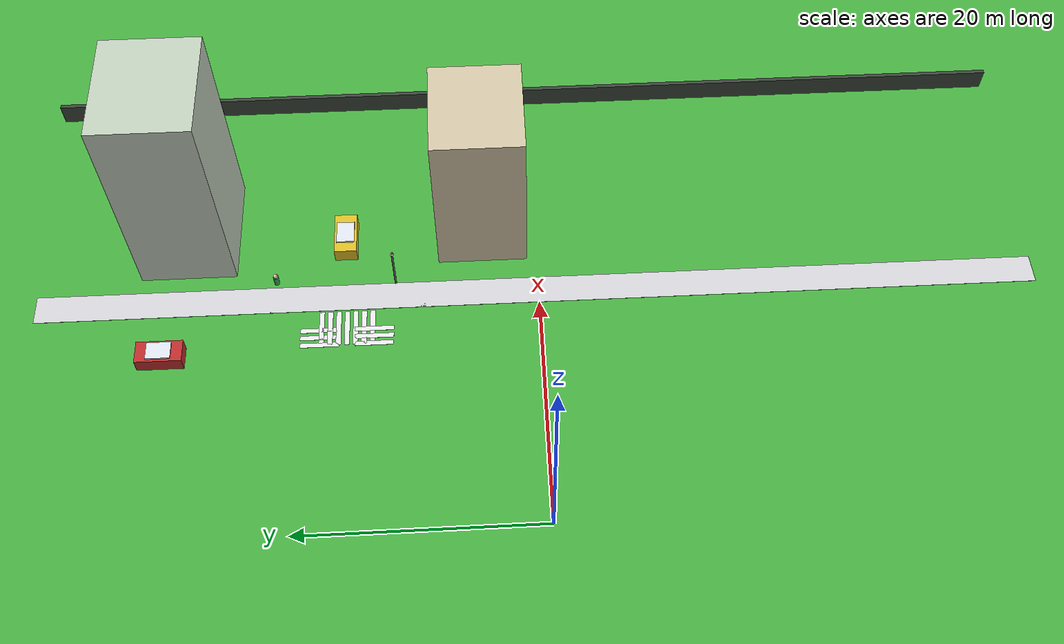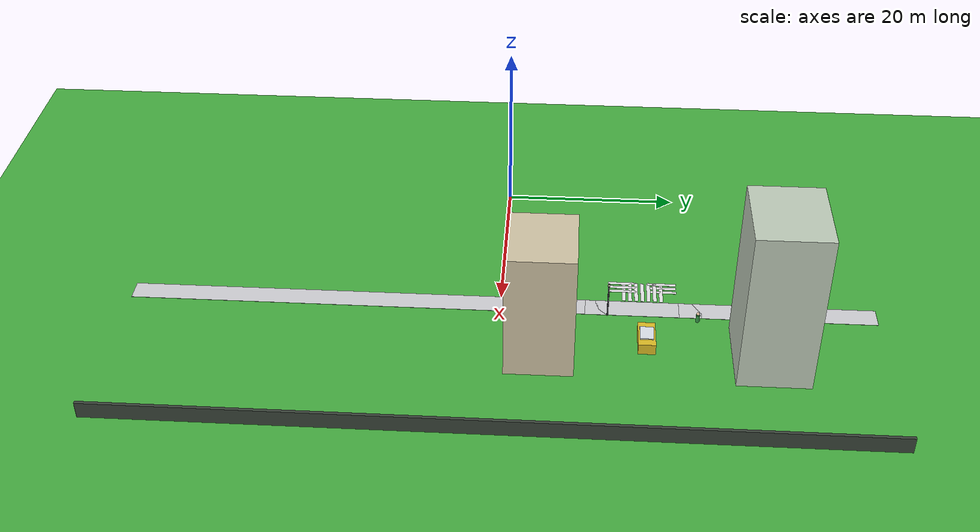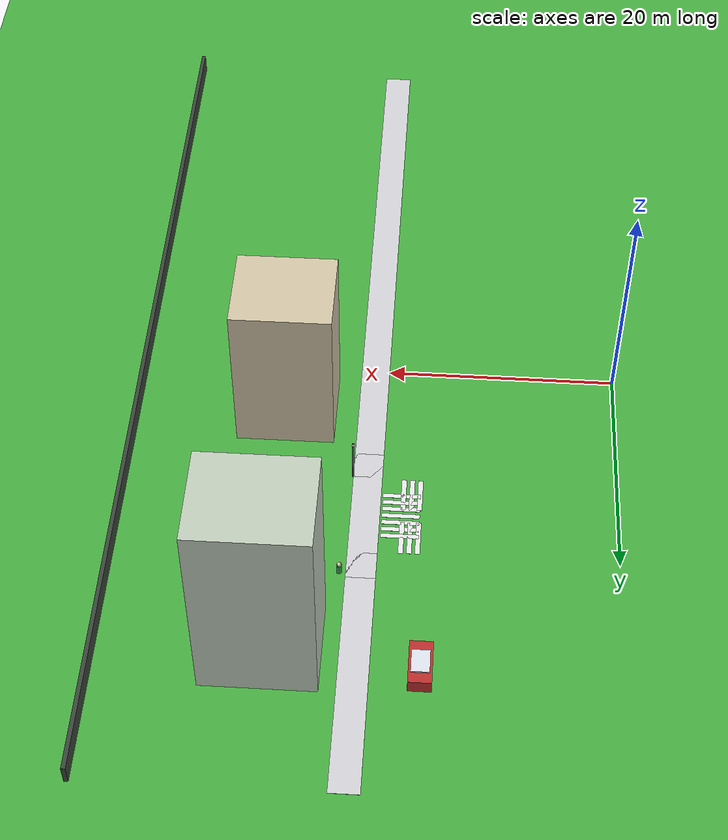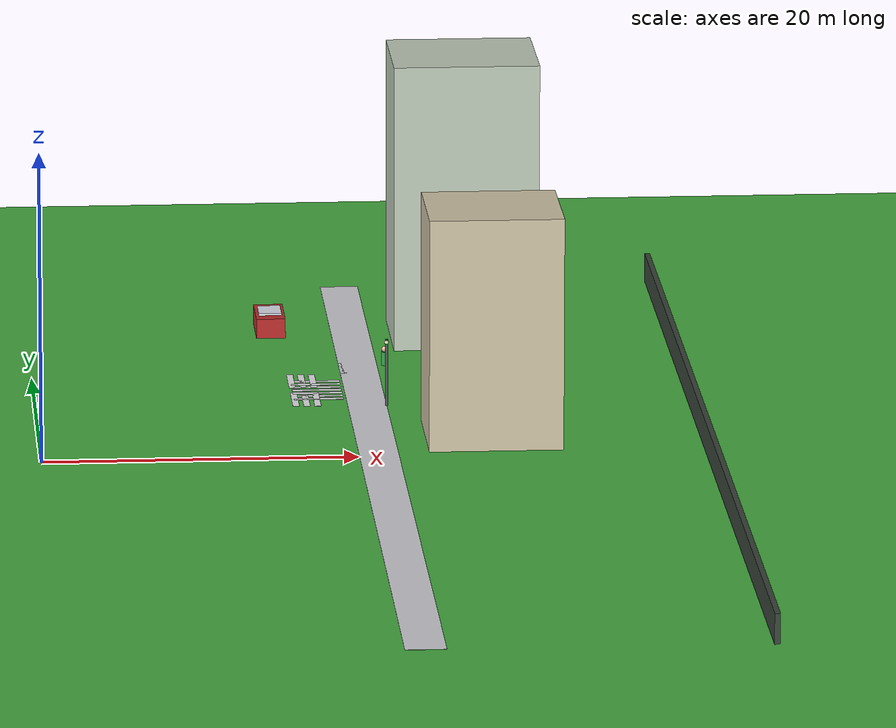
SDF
<sdf version="1.9">
 <world name="city_second">
  <model name="ground_plane">
   <static>true</static>
   <link name="link">
    <collision name="collision">
     <geometry><plane><normal>0 0 1</normal><size>300 300</size></plane></geometry>
    </collision>
    <visual name="visual">
     <geometry><plane><normal>0 0 1</normal><size>300 300</size></plane></geometry>
     <material>
      <ambient>0.28 0.69 0.26 1</ambient>
      <diffuse>0.28 0.69 0.26 1</diffuse>
      <specular>0.03 0.03 0.03 1</specular>
     </material>
    </visual>
   </link>
  </model>
  <model name="sidewalk_v_2_east">
   <static>true</static>
   <pose>21.25 0 0.015 0 0 0.0</pose>
   <link name="link">
    <collision name="collision"><geometry><box><size>2.5 84 0.02</size></box></geometry></collision>
    <visual name="visual">
     <geometry><box><size>2.5 84 0.02</size></box></geometry>
     <material>
      <ambient>0.83 0.83 0.85 1</ambient>
      <diffuse>0.83 0.83 0.85 1</diffuse>
      <specular>0.03 0.03 0.03 1</specular>
     </material>
    </visual>
   </link>
  </model>
  <model name="corner_sidewalk_2_2_3">
   <static>true</static>
   <pose>21.25 10.75 0.015 0 0 0.0</pose>
   <link name="link">
    <collision name="collision"><geometry><box><size>2.5 2.5 0.02</size></box></geometry></collision>
    <visual name="visual">
     <geometry><box><size>2.5 2.5 0.02</size></box></geometry>
     <material>
      <ambient>0.83 0.83 0.85 1</ambient>
      <diffuse>0.83 0.83 0.85 1</diffuse>
      <specular>0.03 0.03 0.03 1</specular>
     </material>
    </visual>
   </link>
  </model>
  <model name="corner_sidewalk_2_2_4">
   <static>true</static>
   <pose>21.25 21.25 0.015 0 0 0.0</pose>
   <link name="link">
    <collision name="collision"><geometry><box><size>2.5 2.5 0.02</size></box></geometry></collision>
    <visual name="visual">
     <geometry><box><size>2.5 2.5 0.02</size></box></geometry>
     <material>
      <ambient>0.83 0.83 0.85 1</ambient>
      <diffuse>0.83 0.83 0.85 1</diffuse>
      <specular>0.03 0.03 0.03 1</specular>
     </material>
    </visual>
   </link>
  </model>
  <model name="crosswalk_h_2_2_south_5">
   <static>true</static>
   <pose>16.7 13.75 0.017 0 0 0.0</pose>
   <link name="link">
    <collision name="collision"><geometry><box><size>0.42 3.2 0.01</size></box></geometry></collision>
    <visual name="visual">
     <geometry><box><size>0.42 3.2 0.01</size></box></geometry>
     <material>
      <ambient>0.92 0.92 0.93 1</ambient>
      <diffuse>0.92 0.92 0.93 1</diffuse>
      <specular>0.03 0.03 0.03 1</specular>
     </material>
    </visual>
   </link>
  </model>
  <model name="crosswalk_h_2_2_south_6">
   <static>true</static>
   <pose>17.4 13.75 0.017 0 0 0.0</pose>
   <link name="link">
    <collision name="collision"><geometry><box><size>0.42 3.2 0.01</size></box></geometry></collision>
    <visual name="visual">
     <geometry><box><size>0.42 3.2 0.01</size></box></geometry>
     <material>
      <ambient>0.92 0.92 0.93 1</ambient>
      <diffuse>0.92 0.92 0.93 1</diffuse>
      <specular>0.03 0.03 0.03 1</specular>
     </material>
    </visual>
   </link>
  </model>
  <model name="crosswalk_h_2_2_south_7">
   <static>true</static>
   <pose>18.1 13.75 0.017 0 0 0.0</pose>
   <link name="link">
    <collision name="collision"><geometry><box><size>0.42 3.2 0.01</size></box></geometry></collision>
    <visual name="visual">
     <geometry><box><size>0.42 3.2 0.01</size></box></geometry>
     <material>
      <ambient>0.92 0.92 0.93 1</ambient>
      <diffuse>0.92 0.92 0.93 1</diffuse>
      <specular>0.03 0.03 0.03 1</specular>
     </material>
    </visual>
   </link>
  </model>
  <model name="crosswalk_h_2_2_north_5">
   <static>true</static>
   <pose>16.7 18.25 0.017 0 0 0.0</pose>
   <link name="link">
    <collision name="collision"><geometry><box><size>0.42 3.2 0.01</size></box></geometry></collision>
    <visual name="visual">
     <geometry><box><size>0.42 3.2 0.01</size></box></geometry>
     <material>
      <ambient>0.92 0.92 0.93 1</ambient>
      <diffuse>0.92 0.92 0.93 1</diffuse>
      <specular>0.03 0.03 0.03 1</specular>
     </material>
    </visual>
   </link>
  </model>
  <model name="crosswalk_h_2_2_north_6">
   <static>true</static>
   <pose>17.4 18.25 0.017 0 0 0.0</pose>
   <link name="link">
    <collision name="collision"><geometry><box><size>0.42 3.2 0.01</size></box></geometry></collision>
    <visual name="visual">
     <geometry><box><size>0.42 3.2 0.01</size></box></geometry>
     <material>
      <ambient>0.92 0.92 0.93 1</ambient>
      <diffuse>0.92 0.92 0.93 1</diffuse>
      <specular>0.03 0.03 0.03 1</specular>
     </material>
    </visual>
   </link>
  </model>
  <model name="crosswalk_h_2_2_north_7">
   <static>true</static>
   <pose>18.1 18.25 0.017 0 0 0.0</pose>
   <link name="link">
    <collision name="collision"><geometry><box><size>0.42 3.2 0.01</size></box></geometry></collision>
    <visual name="visual">
     <geometry><box><size>0.42 3.2 0.01</size></box></geometry>
     <material>
      <ambient>0.92 0.92 0.93 1</ambient>
      <diffuse>0.92 0.92 0.93 1</diffuse>
      <specular>0.03 0.03 0.03 1</specular>
     </material>
    </visual>
   </link>
  </model>
  <model name="crosswalk_v_2_2_east_1">
   <static>true</static>
   <pose>18.25 13.9 0.017 0 0 0.0</pose>
   <link name="link">
    <collision name="collision"><geometry><box><size>3.2 0.42 0.01</size></box></geometry></collision>
    <visual name="visual">
     <geometry><box><size>3.2 0.42 0.01</size></box></geometry>
     <material>
      <ambient>0.92 0.92 0.93 1</ambient>
      <diffuse>0.92 0.92 0.93 1</diffuse>
      <specular>0.03 0.03 0.03 1</specular>
     </material>
    </visual>
   </link>
  </model>
  <model name="crosswalk_v_2_2_east_2">
   <static>true</static>
   <pose>18.25 14.6 0.017 0 0 0.0</pose>
   <link name="link">
    <collision name="collision"><geometry><box><size>3.2 0.42 0.01</size></box></geometry></collision>
    <visual name="visual">
     <geometry><box><size>3.2 0.42 0.01</size></box></geometry>
     <material>
      <ambient>0.92 0.92 0.93 1</ambient>
      <diffuse>0.92 0.92 0.93 1</diffuse>
      <specular>0.03 0.03 0.03 1</specular>
     </material>
    </visual>
   </link>
  </model>
  <model name="crosswalk_v_2_2_east_3">
   <static>true</static>
   <pose>18.25 15.3 0.017 0 0 0.0</pose>
   <link name="link">
    <collision name="collision"><geometry><box><size>3.2 0.42 0.01</size></box></geometry></collision>
    <visual name="visual">
     <geometry><box><size>3.2 0.42 0.01</size></box></geometry>
     <material>
      <ambient>0.92 0.92 0.93 1</ambient>
      <diffuse>0.92 0.92 0.93 1</diffuse>
      <specular>0.03 0.03 0.03 1</specular>
     </material>
    </visual>
   </link>
  </model>
  <model name="crosswalk_v_2_2_east_4">
   <static>true</static>
   <pose>18.25 16.0 0.017 0 0 0.0</pose>
   <link name="link">
    <collision name="collision"><geometry><box><size>3.2 0.42 0.01</size></box></geometry></collision>
    <visual name="visual">
     <geometry><box><size>3.2 0.42 0.01</size></box></geometry>
     <material>
      <ambient>0.92 0.92 0.93 1</ambient>
      <diffuse>0.92 0.92 0.93 1</diffuse>
      <specular>0.03 0.03 0.03 1</specular>
     </material>
    </visual>
   </link>
  </model>
  <model name="crosswalk_v_2_2_east_5">
   <static>true</static>
   <pose>18.25 16.7 0.017 0 0 0.0</pose>
   <link name="link">
    <collision name="collision"><geometry><box><size>3.2 0.42 0.01</size></box></geometry></collision>
    <visual name="visual">
     <geometry><box><size>3.2 0.42 0.01</size></box></geometry>
     <material>
      <ambient>0.92 0.92 0.93 1</ambient>
      <diffuse>0.92 0.92 0.93 1</diffuse>
      <specular>0.03 0.03 0.03 1</specular>
     </material>
    </visual>
   </link>
  </model>
  <model name="crosswalk_v_2_2_east_6">
   <static>true</static>
   <pose>18.25 17.4 0.017 0 0 0.0</pose>
   <link name="link">
    <collision name="collision"><geometry><box><size>3.2 0.42 0.01</size></box></geometry></collision>
    <visual name="visual">
     <geometry><box><size>3.2 0.42 0.01</size></box></geometry>
     <material>
      <ambient>0.92 0.92 0.93 1</ambient>
      <diffuse>0.92 0.92 0.93 1</diffuse>
      <specular>0.03 0.03 0.03 1</specular>
     </material>
    </visual>
   </link>
  </model>
  <model name="crosswalk_v_2_2_east_7">
   <static>true</static>
   <pose>18.25 18.1 0.017 0 0 0.0</pose>
   <link name="link">
    <collision name="collision"><geometry><box><size>3.2 0.42 0.01</size></box></geometry></collision>
    <visual name="visual">
     <geometry><box><size>3.2 0.42 0.01</size></box></geometry>
     <material>
      <ambient>0.92 0.92 0.93 1</ambient>
      <diffuse>0.92 0.92 0.93 1</diffuse>
      <specular>0.03 0.03 0.03 1</specular>
     </material>
    </visual>
   </link>
  </model>
  <model name="house_2_3">
   <static>true</static>
   <pose>28.7 4.6 7.5 0 0 0.0</pose>
   <link name="link">
    <collision name="collision"><geometry><box><size>8.5 7.5 15</size></box></geometry></collision>
    <visual name="visual">
     <geometry><box><size>8.5 7.5 15</size></box></geometry>
     <material>
      <ambient>0.83 0.78 0.66 1</ambient>
      <diffuse>0.83 0.78 0.66 1</diffuse>
      <specular>0.03 0.03 0.03 1</specular>
     </material>
    </visual>
   </link>
  </model>
  <model name="house_3_3">
   <static>true</static>
   <pose>28.6 29.4 9.5 0 0 0.0</pose>
   <link name="link">
    <collision name="collision"><geometry><box><size>9.5 8.0 19</size></box></geometry></collision>
    <visual name="visual">
     <geometry><box><size>9.5 8.0 19</size></box></geometry>
     <material>
      <ambient>0.76 0.81 0.74 1</ambient>
      <diffuse>0.76 0.81 0.74 1</diffuse>
      <specular>0.03 0.03 0.03 1</specular>
     </material>
    </visual>
   </link>
  </model>
  <model name="car_3">
   <static>true</static>
   <pose>27.0 16.2 0.65 0 0 0.0</pose>
   <link name="link">
    <collision name="collision"><geometry><box><size>3.8 1.9 1.3</size></box></geometry></collision>
    <visual name="body">
     <geometry><box><size>3.8 1.9 1.3</size></box></geometry>
     <material>
      <ambient>0.88 0.75 0.15 1</ambient>
      <diffuse>0.88 0.75 0.15 1</diffuse>
      <specular>0.03 0.03 0.03 1</specular>
     </material>
    </visual>
    <visual name="roof">
     <pose>0 0 0.55 0 0 0</pose>
     <geometry><box><size>2.0 1.5 0.5</size></box></geometry>
     <material>
      <ambient>0.88 0.9 0.94 1</ambient>
      <diffuse>0.88 0.9 0.94 1</diffuse>
      <specular>0.03 0.03 0.03 1</specular>
     </material>
    </visual>
   </link>
  </model>
  <model name="car_6">
   <static>true</static>
   <pose>16.0 31.0 0.65 0 0 1.5707963267948966</pose>
   <link name="link">
    <collision name="collision"><geometry><box><size>3.8 1.9 1.3</size></box></geometry></collision>
    <visual name="body">
     <geometry><box><size>3.8 1.9 1.3</size></box></geometry>
     <material>
      <ambient>0.75 0.18 0.18 1</ambient>
      <diffuse>0.75 0.18 0.18 1</diffuse>
      <specular>0.03 0.03 0.03 1</specular>
     </material>
    </visual>
    <visual name="roof">
     <pose>0 0 0.55 0 0 0</pose>
     <geometry><box><size>2.0 1.5 0.5</size></box></geometry>
     <material>
      <ambient>0.88 0.9 0.94 1</ambient>
      <diffuse>0.88 0.9 0.94 1</diffuse>
      <specular>0.03 0.03 0.03 1</specular>
     </material>
    </visual>
   </link>
  </model>
  <model name="person_9">
   <static>true</static>
   <pose>23.0 22.0 0 0 0 -0.484</pose>
   <link name="link">
    <collision name="legs">
     <pose>0 0 0.45 0 0 0</pose>
     <geometry><cylinder><radius>0.18</radius><length>0.9</length></cylinder></geometry>
    </collision>
    <visual name="torso">
     <pose>0 0 0.45 0 0 0</pose>
     <geometry><cylinder><radius>0.22</radius><length>0.9</length></cylinder></geometry>
     <material>
      <ambient>0.21 0.6 0.28 1</ambient>
      <diffuse>0.21 0.6 0.28 1</diffuse>
      <specular>0.03 0.03 0.03 1</specular>
     </material>
    </visual>
    <visual name="head">
     <pose>0 0 1.05 0 0 0</pose>
     <geometry><sphere><radius>0.18</radius></sphere></geometry>
     <material>
      <ambient>0.92 0.78 0.66 1</ambient>
      <diffuse>0.92 0.78 0.66 1</diffuse>
      <specular>0.03 0.03 0.03 1</specular>
     </material>
    </visual>
   </link>
  </model>
  <model name="lamp_8">
   <static>true</static>
   <pose>22.5 12.0 2.2 0 0 0</pose>
   <link name="link">
    <collision name="collision">
     <geometry><cylinder><radius>0.08</radius><length>4.4</length></cylinder></geometry>
    </collision>
    <visual name="pole">
     <geometry><cylinder><radius>0.08</radius><length>4.4</length></cylinder></geometry>
     <material>
      <ambient>0.35 0.36 0.38 1</ambient>
      <diffuse>0.35 0.36 0.38 1</diffuse>
      <specular>0.03 0.03 0.03 1</specular>
     </material>
    </visual>
    <visual name="lamp_head">
     <pose>0 0 2.0 0 0 0</pose>
     <geometry><sphere><radius>0.14</radius></sphere></geometry>
     <material>
      <ambient>0.96 0.94 0.78 1</ambient>
      <diffuse>0.96 0.94 0.78 1</diffuse>
      <specular>0.03 0.03 0.03 1</specular>
     </material>
    </visual>
   </link>
  </model>
  <model name="fence_east">
   <static>true</static>
   <pose>42.0 0 0.95 0 0 0.0</pose>
   <link name="link">
    <collision name="collision"><geometry><box><size>0.35 84.5 1.9</size></box></geometry></collision>
    <visual name="visual">
     <geometry><box><size>0.35 84.5 1.9</size></box></geometry>
     <material>
      <ambient>0.23 0.27 0.23 1</ambient>
      <diffuse>0.23 0.27 0.23 1</diffuse>
      <specular>0.03 0.03 0.03 1</specular>
     </material>
    </visual>
   </link>
  </model>
 </world>
</sdf>
